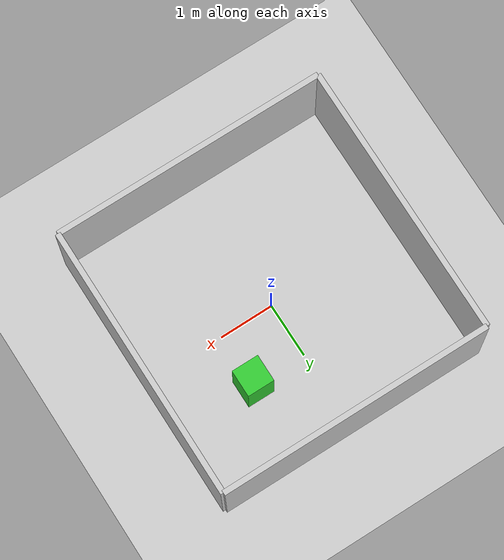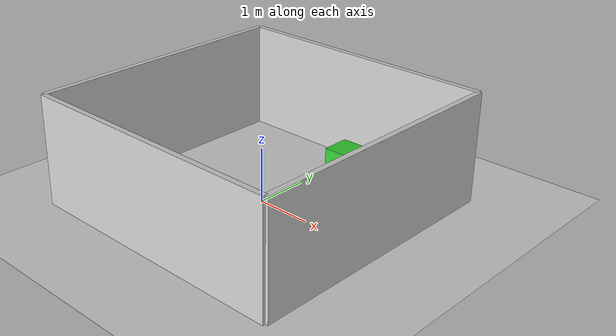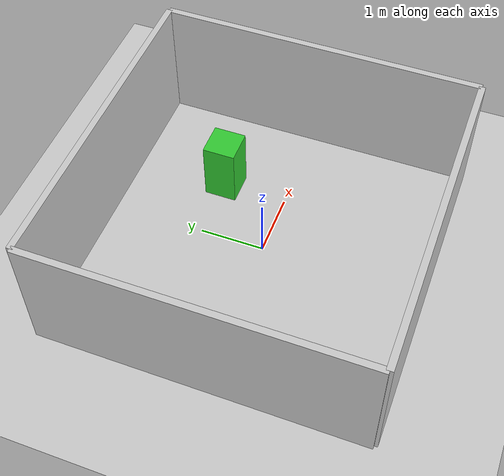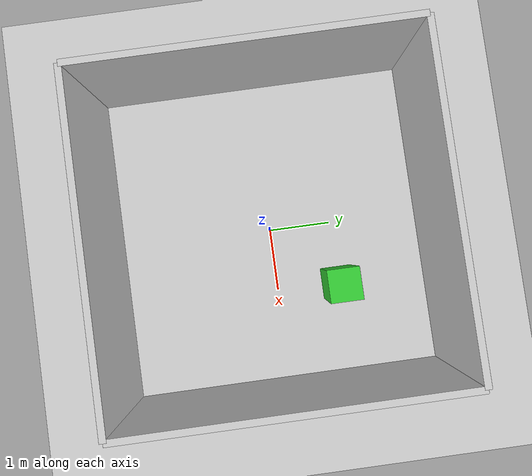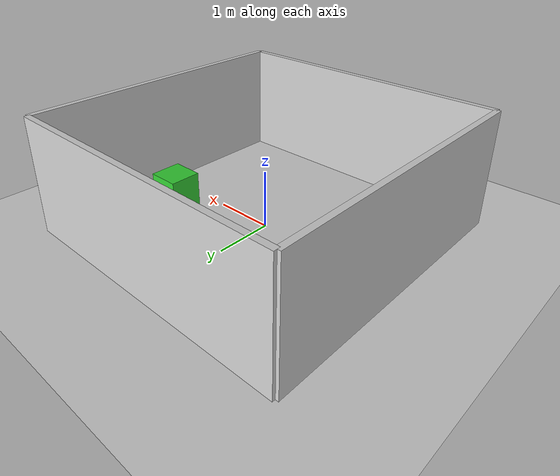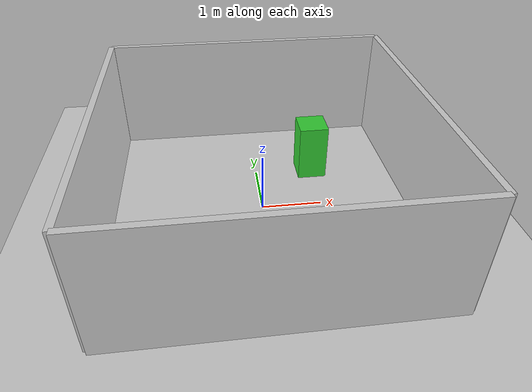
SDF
<?xml version="1.0"?>
<sdf version="1.7">
  <world name="small_room">
    <physics name="1ms" type="ode">
      <max_step_size>0.001</max_step_size>
      <real_time_factor>1.0</real_time_factor>
      <real_time_update_rate>1000</real_time_update_rate>
    </physics>

    <plugin filename="libgazebo_ros_init.so" name="gazebo_ros_init">
      <ros>
        <namespace>/</namespace>
      </ros>
    </plugin>

    <plugin filename="libgazebo_ros_state.so" name="gazebo_ros_state">
      <ros>
        <namespace>/</namespace>
      </ros>
      <update_rate>10.0</update_rate>
    </plugin>

    <scene>
      <ambient>0.4 0.4 0.4 1</ambient>
      <background>0.7 0.7 0.7 1</background>
      <shadows>1</shadows>
    </scene>

    <!-- Sun light -->
    <light type="directional" name="sun">
      <cast_shadows>true</cast_shadows>
      <pose>0 0 10 0 0 0</pose>
      <diffuse>0.8 0.8 0.8 1</diffuse>
      <specular>0.2 0.2 0.2 1</specular>
      <attenuation>
        <range>1000</range>
        <constant>0.9</constant>
        <linear>0.01</linear>
        <quadratic>0.001</quadratic>
      </attenuation>
      <direction>-0.5 0.1 -0.9</direction>
    </light>

    <!-- Ground plane -->
    <model name="ground_plane">
      <static>true</static>
      <link name="link">
        <collision name="collision">
          <geometry>
            <plane><normal>0 0 1</normal><size>50 50</size></plane>
          </geometry>
          <surface>
            <friction>
              <ode><mu>0.6</mu><mu2>0.6</mu2></ode>
            </friction>
          </surface>
        </collision>
        <visual name="visual">
          <cast_shadows>false</cast_shadows>
          <geometry>
            <plane><normal>0 0 1</normal><size>50 50</size></plane>
          </geometry>
          <material>
            <ambient>0.8 0.8 0.8 1</ambient>
            <diffuse>0.8 0.8 0.8 1</diffuse>
            <specular>0.8 0.8 0.8 1</specular>
          </material>
        </visual>
      </link>
    </model>

    <!-- Room walls (5m x 5m room) -->
    <!-- Wall: North -->
    <model name="wall_north">
      <static>true</static>
      <pose>0 2.5 1.0 0 0 0</pose>
      <link name="link">
        <collision name="collision">
          <geometry><box><size>5.0 0.1 2.0</size></box></geometry>
        </collision>
        <visual name="visual">
          <geometry><box><size>5.0 0.1 2.0</size></box></geometry>
          <material><ambient>0.8 0.8 0.8 1</ambient><diffuse>0.8 0.8 0.8 1</diffuse></material>
        </visual>
      </link>
    </model>

    <!-- Wall: South -->
    <model name="wall_south">
      <static>true</static>
      <pose>0 -2.5 1.0 0 0 0</pose>
      <link name="link">
        <collision name="collision">
          <geometry><box><size>5.0 0.1 2.0</size></box></geometry>
        </collision>
        <visual name="visual">
          <geometry><box><size>5.0 0.1 2.0</size></box></geometry>
          <material><ambient>0.8 0.8 0.8 1</ambient><diffuse>0.8 0.8 0.8 1</diffuse></material>
        </visual>
      </link>
    </model>

    <!-- Wall: East -->
    <model name="wall_east">
      <static>true</static>
      <pose>2.5 0 1.0 0 0 0</pose>
      <link name="link">
        <collision name="collision">
          <geometry><box><size>0.1 5.0 2.0</size></box></geometry>
        </collision>
        <visual name="visual">
          <geometry><box><size>0.1 5.0 2.0</size></box></geometry>
          <material><ambient>0.8 0.8 0.8 1</ambient><diffuse>0.8 0.8 0.8 1</diffuse></material>
        </visual>
      </link>
    </model>

    <!-- Wall: West -->
    <model name="wall_west">
      <static>true</static>
      <pose>-2.5 0 1.0 0 0 0</pose>
      <link name="link">
        <collision name="collision">
          <geometry><box><size>0.1 5.0 2.0</size></box></geometry>
        </collision>
        <visual name="visual">
          <geometry><box><size>0.1 5.0 2.0</size></box></geometry>
          <material><ambient>0.8 0.8 0.8 1</ambient><diffuse>0.8 0.8 0.8 1</diffuse></material>
        </visual>
      </link>
    </model>

    <!-- Obstacle: box -->
    <model name="box_obstacle">
      <static>true</static>
      <pose>1.0 1.0 0.5 0 0 0</pose>
      <link name="link">
        <collision name="collision">
          <geometry><box><size>0.5 0.5 1.0</size></box></geometry>
        </collision>
        <visual name="visual">
          <geometry><box><size>0.5 0.5 1.0</size></box></geometry>
          <material><ambient>0.2 0.8 0.2 1</ambient><diffuse>0.2 0.8 0.2 1</diffuse></material>
        </visual>
      </link>
    </model>

  </world>
</sdf>
